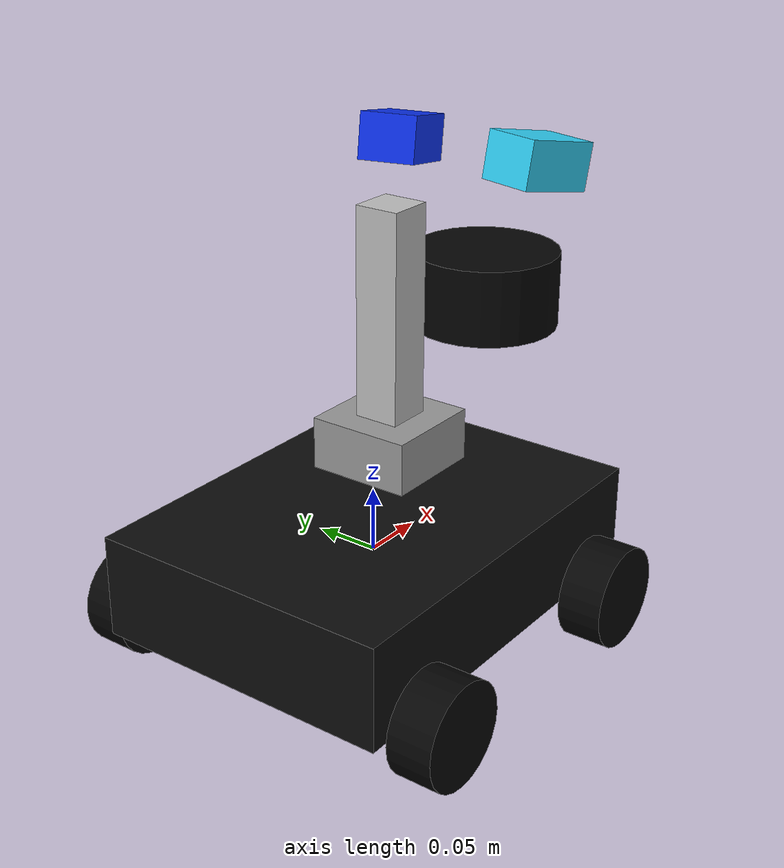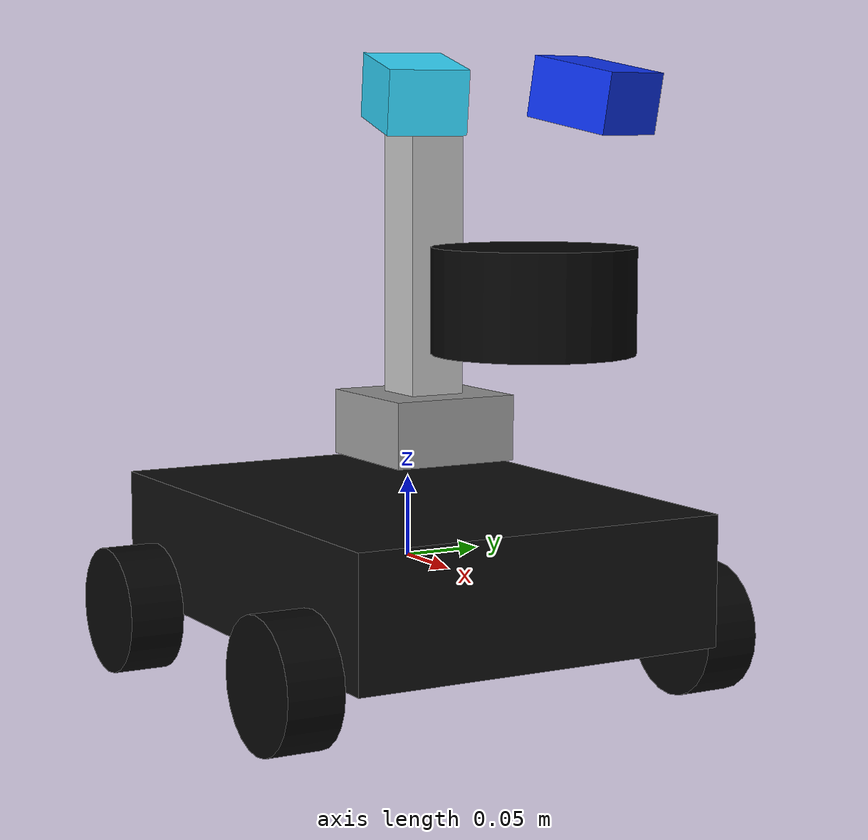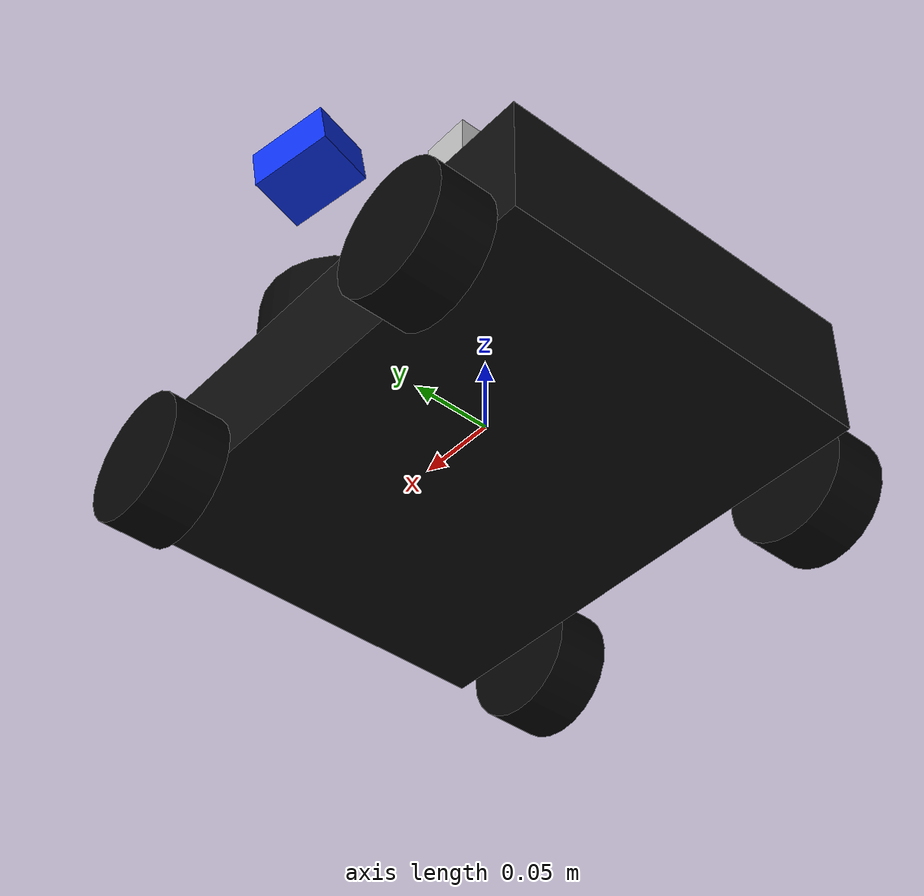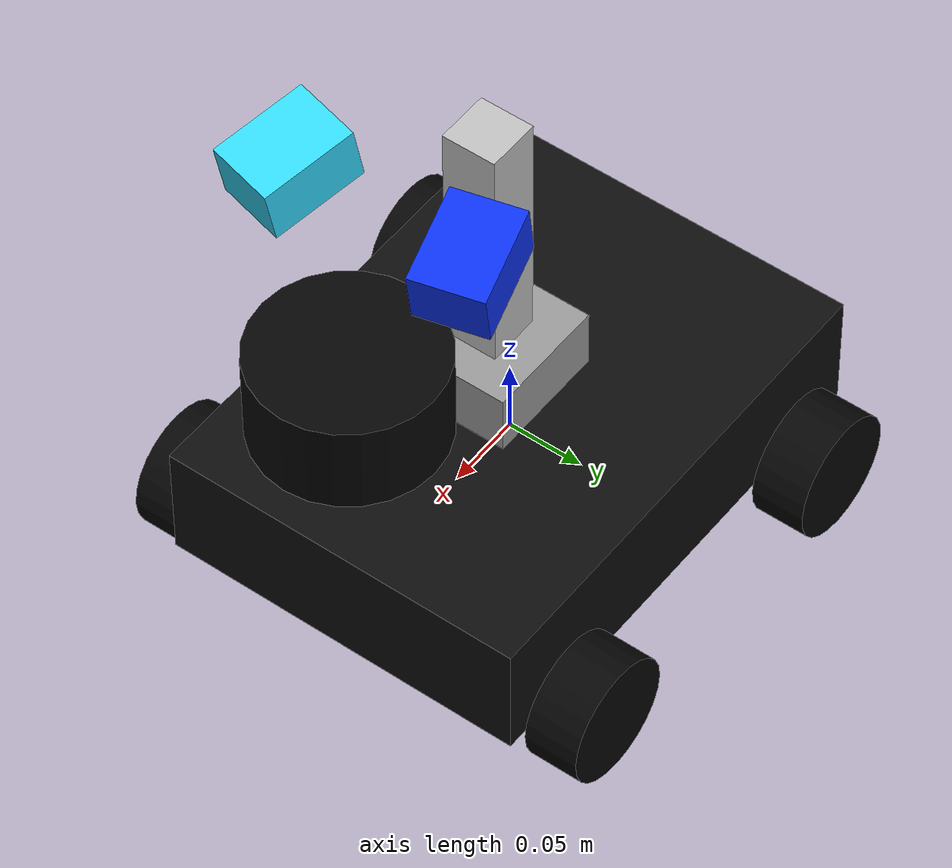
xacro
<?xml version="1.0"?>
<robot name="mobile_sorting_robot" xmlns:xacro="http://www.ros.org/wiki/xacro">

  <xacro:arg name="use_sim" default="true"/>

  <xacro:include filename="$(find msr_description)/urdf/chassis.xacro"/>
  <xacro:include filename="$(find msr_description)/urdf/mecanum_wheel.xacro"/>
  <xacro:include filename="$(find msr_description)/urdf/sensors.xacro"/>
  <xacro:include filename="$(find msr_description)/urdf/arm_mg996r.xacro"/>

  <!-- base_link is now the root link; base_footprint is omitted for correct TF hierarchy -->

  <xacro:msr_chassis/>

  <!-- 80mm wheels, visual mecanum-like, physics handled in Gazebo SDF by DiffDrive for Day 1 -->
  <xacro:msr_mecanum_wheel
    name="front_left_wheel"
    parent="base_link"
    xyz="0.11 0.14 -0.04"
    rpy="1.57079632679 0 0"/>

  <xacro:msr_mecanum_wheel
    name="rear_left_wheel"
    parent="base_link"
    xyz="-0.11 0.14 -0.04"
    rpy="1.57079632679 0 0"/>

  <xacro:msr_mecanum_wheel
    name="front_right_wheel"
    parent="base_link"
    xyz="0.11 -0.14 -0.04"
    rpy="1.57079632679 0 0"/>

  <xacro:msr_mecanum_wheel
    name="rear_right_wheel"
    parent="base_link"
    xyz="-0.11 -0.14 -0.04"
    rpy="1.57079632679 0 0"/>

  <xacro:msr_sensors/>
  <xacro:msr_simple_arm/>

</robot>

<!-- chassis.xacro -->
<robot xmlns:xacro="http://www.ros.org/wiki/xacro">

  <xacro:macro name="box_inertia" params="mass x y z">
    <inertial>
      <mass value="${mass}"/>
      <inertia
        ixx="${mass * (y*y + z*z) / 12.0}"
        ixy="0.0"
        ixz="0.0"
        iyy="${mass * (x*x + z*z) / 12.0}"
        iyz="0.0"
        izz="${mass * (x*x + y*y) / 12.0}"/>
    </inertial>
  </xacro:macro>

  <xacro:macro name="msr_chassis">
    <link name="base_link">
      <visual>
        <origin xyz="0 0 0" rpy="0 0 0"/>
        <geometry>
          <box size="0.32 0.24 0.08"/>
        </geometry>
        <material name="mat_chassis_black">
          <color rgba="0.05 0.05 0.05 1.0"/>
        </material>
      </visual>

      <collision>
        <origin xyz="0 0 0" rpy="0 0 0"/>
        <geometry>
          <box size="0.32 0.24 0.08"/>
        </geometry>
      </collision>

      <xacro:box_inertia mass="3.0" x="0.32" y="0.24" z="0.08"/>
    </link>
  </xacro:macro>

</robot>

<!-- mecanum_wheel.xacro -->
<robot xmlns:xacro="http://www.ros.org/wiki/xacro">

  <xacro:macro name="cylinder_inertia" params="mass radius length">
    <inertial>
      <mass value="${mass}"/>
      <inertia
        ixx="${mass * (3*radius*radius + length*length) / 12.0}"
        ixy="0.0"
        ixz="0.0"
        iyy="${mass * (3*radius*radius + length*length) / 12.0}"
        iyz="0.0"
        izz="${mass * radius*radius / 2.0}"/>
    </inertial>
  </xacro:macro>

  <xacro:macro name="msr_mecanum_wheel" params="name parent xyz rpy">
    <link name="${name}">
      <visual>
        <origin xyz="0 0 0" rpy="0 0 0"/>
        <geometry>
          <cylinder radius="0.04" length="0.035"/>
        </geometry>
        <material name="${name}_mat">
          <color rgba="0.02 0.02 0.02 1.0"/>
        </material>
      </visual>

      <collision>
        <origin xyz="0 0 0" rpy="0 0 0"/>
        <geometry>
          <cylinder radius="0.04" length="0.035"/>
        </geometry>
      </collision>

      <xacro:cylinder_inertia mass="0.25" radius="0.04" length="0.035"/>
    </link>

    <joint name="${name}_joint" type="fixed">
      <parent link="${parent}"/>
      <child link="${name}"/>
      <origin xyz="${xyz}" rpy="${rpy}"/>
    </joint>
  </xacro:macro>

</robot>

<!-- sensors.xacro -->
<robot xmlns:xacro="http://www.ros.org/wiki/xacro">

  <xacro:macro name="msr_sensors">

    <!-- LiDAR frame: keep close to the current Gazebo SDF pose. -->
    <link name="lidar_link">
      <visual>
        <origin xyz="0 0 0" rpy="0 0 0"/>
        <geometry>
          <cylinder radius="0.058" length="0.060"/>
        </geometry>
        <material name="mat_lidar_black">
          <color rgba="0.02 0.02 0.02 1.0"/>
        </material>
      </visual>
    </link>

    <joint name="base_link_to_lidar_link" type="fixed">
      <parent link="base_link"/>
      <child link="lidar_link"/>
      <origin xyz="0.145 0 0.170" rpy="0 0 0"/>
    </joint>

    <!-- Left RGB camera frame. -->
    <link name="left_rgb_camera_link">
      <visual>
        <origin xyz="0 0 0" rpy="0 0 0"/>
        <geometry>
          <box size="0.060 0.045 0.036"/>
        </geometry>
        <material name="mat_left_camera">
          <color rgba="0.05 0.20 0.95 1.0"/>
        </material>
      </visual>
    </link>

    <joint name="base_link_to_left_rgb_camera_link" type="fixed">
      <parent link="base_link"/>
      <child link="left_rgb_camera_link"/>
      <origin xyz="0.115 0.060 0.285" rpy="0 0.18 0.25"/>
    </joint>

    <link name="left_rgb_camera_optical_link"/>

    <joint name="left_rgb_camera_to_optical" type="fixed">
      <parent link="left_rgb_camera_link"/>
      <child link="left_rgb_camera_optical_link"/>
      <origin xyz="0 0 0" rpy="-1.57079632679 0 -1.57079632679"/>
    </joint>

    <!-- Right RGB camera frame. -->
    <link name="right_rgb_camera_link">
      <visual>
        <origin xyz="0 0 0" rpy="0 0 0"/>
        <geometry>
          <box size="0.060 0.045 0.036"/>
        </geometry>
        <material name="mat_right_camera">
          <color rgba="0.20 0.85 1.00 1.0"/>
        </material>
      </visual>
    </link>

    <joint name="base_link_to_right_rgb_camera_link" type="fixed">
      <parent link="base_link"/>
      <child link="right_rgb_camera_link"/>
      <origin xyz="0.115 -0.060 0.285" rpy="0 0.18 -0.25"/>
    </joint>

    <link name="right_rgb_camera_optical_link"/>

    <joint name="right_rgb_camera_to_optical" type="fixed">
      <parent link="right_rgb_camera_link"/>
      <child link="right_rgb_camera_optical_link"/>
      <origin xyz="0 0 0" rpy="-1.57079632679 0 -1.57079632679"/>
    </joint>

    <!-- IMU frame. -->
    <link name="imu_link"/>

    <joint name="base_link_to_imu_link" type="fixed">
      <parent link="base_link"/>
      <child link="imu_link"/>
      <origin xyz="0.045 0 0.068" rpy="0 0 0"/>
    </joint>

  </xacro:macro>

</robot>

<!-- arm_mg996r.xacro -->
<robot xmlns:xacro="http://www.ros.org/wiki/xacro">

  <!-- Day 1: only a static placeholder so RViz/Gazebo can show future arm location.
       Real servo chain will be added after base simulation is stable. -->
  <xacro:macro name="msr_simple_arm">

    <link name="arm_base_link">
      <visual>
        <geometry>
          <box size="0.08 0.08 0.04"/>
        </geometry>
        <material name="mat_arm_base">
          <color rgba="0.6 0.6 0.6 1.0"/>
        </material>
      </visual>
    </link>

    <joint name="base_link_to_arm_base_link" type="fixed">
      <parent link="base_link"/>
      <child link="arm_base_link"/>
      <origin xyz="0.02 0 0.085" rpy="0 0 0"/>
    </joint>

    <link name="arm_preview_link">
      <visual>
        <origin xyz="0 0 0.08" rpy="0 0 0"/>
        <geometry>
          <box size="0.035 0.035 0.16"/>
        </geometry>
        <material name="mat_arm_preview">
          <color rgba="0.75 0.75 0.75 1.0"/>
        </material>
      </visual>
    </link>

    <joint name="arm_base_to_arm_preview_link" type="fixed">
      <parent link="arm_base_link"/>
      <child link="arm_preview_link"/>
      <origin xyz="0 0 0.02" rpy="0 0 0"/>
    </joint>

  </xacro:macro>

</robot>
